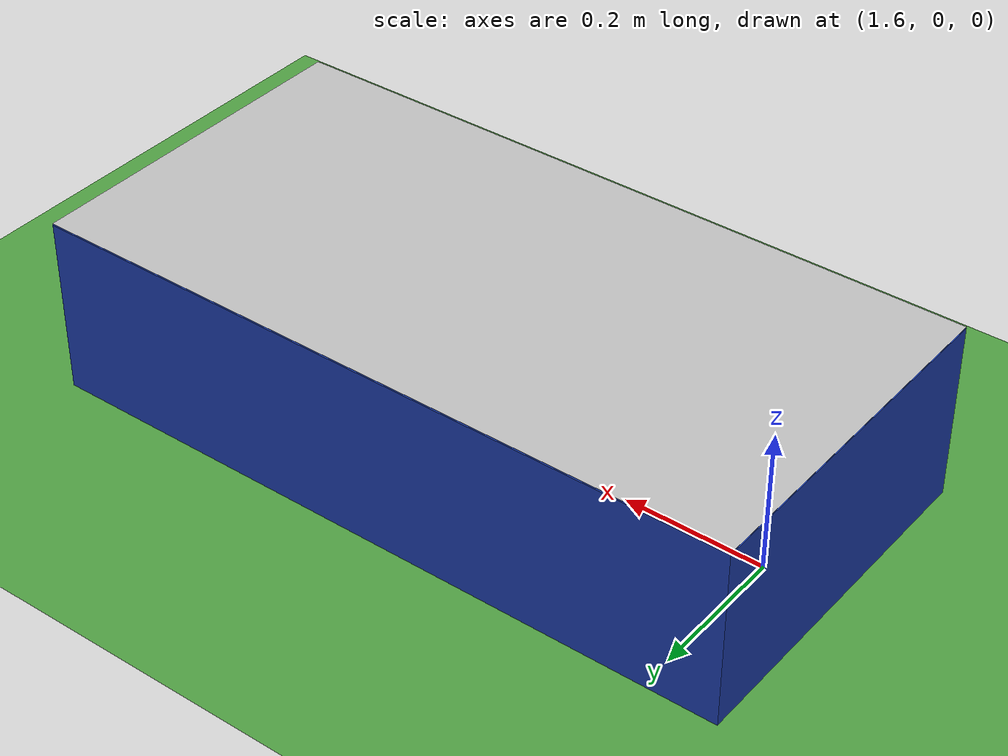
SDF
<?xml version="1.0" ?>
<sdf version="1.4">
  <world name="default">
    <light type="directional" name="sun">
      <cast_shadows>true</cast_shadows>
      <pose>0 0 10 0 0 0</pose>
      <diffuse>0.8 0.8 0.8 1</diffuse>
      <specular>0.2 0.2 0.2 1</specular>
      <attenuation>
        <range>1000</range>
        <constant>0.9</constant>
        <linear>0.01</linear>
        <quadratic>0.001</quadratic>
      </attenuation>
      <direction>0.05 0.05 -1</direction>
    </light>
    <include>
      <uri>model://logo_box1</uri>
      <name>logo_box1</name>
      <static>false</static>
      <pose>2 0 0 0 0 0</pose>
    </include>

    <model name='ground_plane'>
      <static>true</static>
      <link name='link'>
        <collision name='collision'>
          <geometry>
            <plane>
              <normal>0 0 1</normal>
              <size>20 20</size>
            </plane>
          </geometry>
          <surface>
            <friction>
              <ode>
                <mu>100</mu>
                <mu2>50</mu2>
              </ode>
            </friction>
            <bounce/>
            <contact>
              <ode/>
            </contact>
          </surface>
          <max_contacts>10</max_contacts>
        </collision>
        <visual name='visual'>
          <cast_shadows>0</cast_shadows>
          <geometry>
            <plane>
              <normal>0 0 1</normal>
              <size>20 20</size>
            </plane>
          </geometry>
          <material>
            <script>
              <uri>file://media/materials/scripts/gazebo.material</uri>
              <name>Gazebo/Grass</name>
            </script>
          </material>
        </visual>
      </link>
    </model>
    <spherical_coordinates>
      <surface_model>EARTH_WGS84</surface_model>
      <latitude_deg>47.3667</latitude_deg>
      <longitude_deg>8.5500</longitude_deg>
      <elevation>500.0</elevation>
      <heading_deg>0</heading_deg>
    </spherical_coordinates>
    <physics type='ode'>
      <ode>
        <solver>
          <type>quick</type>
          <iters>1000</iters>
          <sor>1.3</sor>
        </solver>
        <constraints>
          <cfm>0</cfm>
          <erp>0.2</erp>
          <contact_max_correcting_vel>100</contact_max_correcting_vel>
          <contact_surface_layer>0.001</contact_surface_layer>
        </constraints>
      </ode>
      <max_step_size>0.005</max_step_size>
      <!-- real_time_factor = max_step_size * real_time_update_rate -->
      <real_time_factor>1</real_time_factor>
      <real_time_update_rate>200</real_time_update_rate>
      <gravity>0 0 -9.8</gravity>
    </physics>
  </world>
</sdf>

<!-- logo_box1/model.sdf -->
<sdf version='1.6'>
  <model name='logo_box1'>
    <static>false</static>
    <link name='box'>
      <pose>0 0 0.25 0 0 0</pose>
      <inertial>
        <mass>2</mass>
        <inertia>
          <ixx>0.052083</ixx>
          <ixy>0</ixy>
          <ixz>0</ixz>
          <iyy>0.177083</iyy>
          <iyz>0</iyz>
          <izz>0.208333</izz>
        </inertia>
      </inertial>
      <visual name='box'>
        <pose>0 0 -0.125 0 0 0</pose>
        <cast_shadows>true</cast_shadows>
        <geometry>
          <box>
            <size>1 0.5 0.25</size>
          </box>
        </geometry>
        <material>
          <script>
            <uri>file://media/materials/scripts/gazebo.material</uri>
            <name>Gazebo/Blue</name>
          </script>
        </material>
      </visual>
      <visual name='logo'>
        <pose>-0 0 0.002 0 0 0</pose>
        <cast_shadows>false</cast_shadows>
        <geometry>
          <plane>
            <normal>0 0 1</normal>
            <size>1 0.5</size>
          </plane>
        </geometry>
        <material>
          <script>
            <uri>model://logo_box/materials/scripts</uri>
            <uri>model://logo_box/materials/textures</uri>
            <name>tian_gong_zhu_ta/logo1</name>
          </script>
        </material>
      </visual>
      <collision name='box'>
        <pose>0 0 -0.125 0 0 0</pose>
        <geometry>
          <box>
            <size>1 0.5 0.25</size>
          </box>
        </geometry>
        <surface>
          <friction>
            <ode>
              <mu>100</mu>
              <mu2>50</mu2>
            </ode>
          </friction>
        </surface>
      </collision>
    </link>
  </model>
</sdf>
